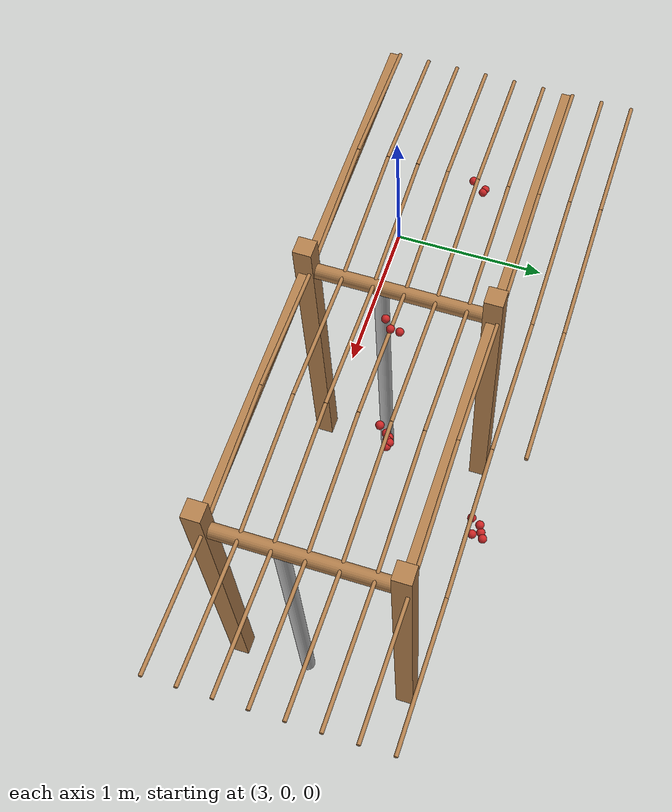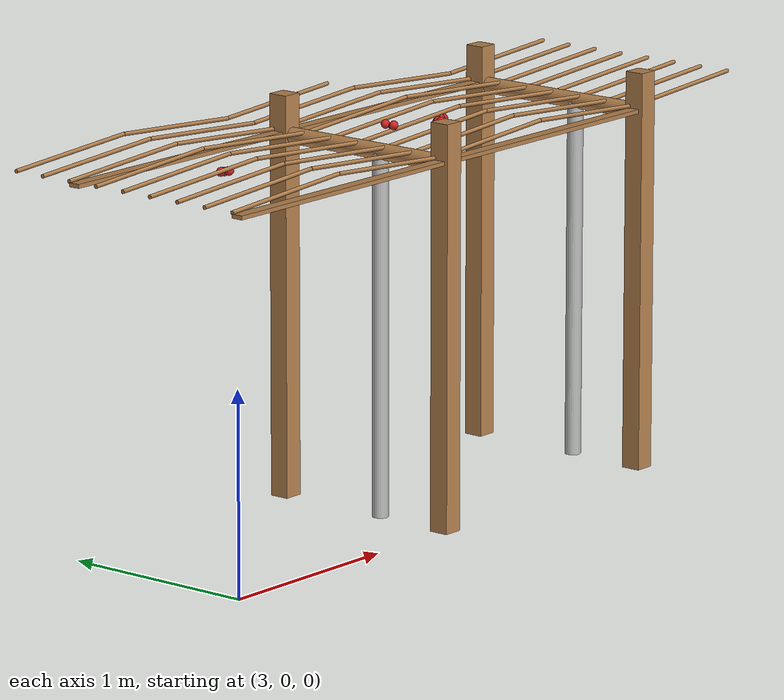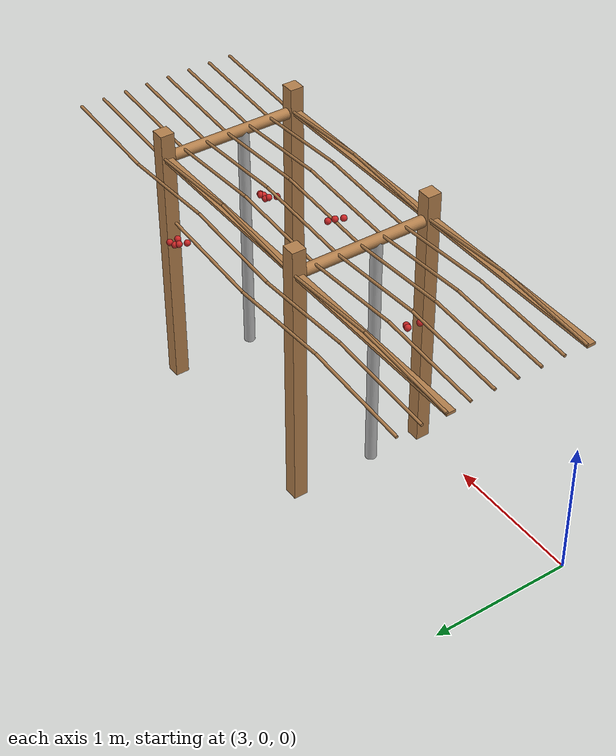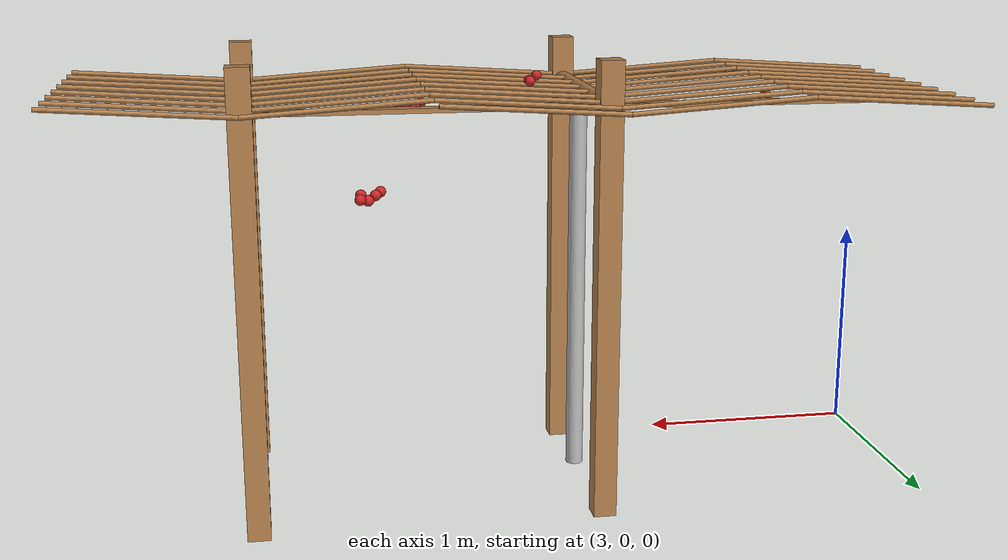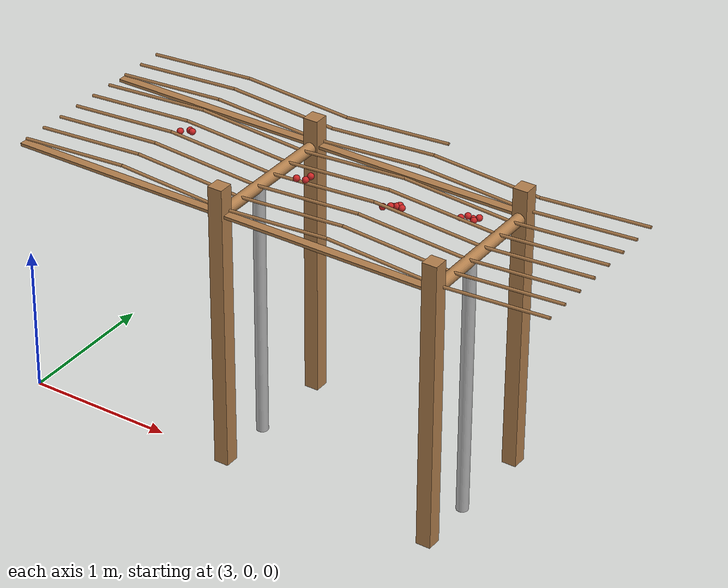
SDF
<sdf version="1.4">
 <model name="pergola">
  <include><name>post_33</name><pose>4.5 0.0 0 0 0 0</pose><uri>model://post</uri></include>
  <include><name>post_34</name><pose>4.5 1.0 0 0 0 0</pose><uri>model://post</uri></include>
  <include><name>post_44</name><pose>6.0 0.0 0 0 0 0</pose><uri>model://post</uri></include>
  <include><name>post_45</name><pose>6.0 1.0 0 0 0 0</pose><uri>model://post</uri></include>
  <link name="beam_22">
   <pose>3.75 0.0 1.81 0 0 0</pose>
   <collision name="collision"><geometry><box><size>1.5 0.06 0.02</size></box></geometry></collision>
   <visual name="visual">
    <geometry><box><size>1.5 0.06 0.02</size></box></geometry>
    <material><script><name>Gazebo/Wood</name></script></material>
   </visual>
   <inertial>
    <mass>5</mass>
    <inertia>
     <ixx>0.0016666666666666668</ixx>
     <ixy>0.0</ixy>
     <ixz>0.0</ixz>
     <iyy>0.9390000000000001</iyy>
     <iyz>0.0</iyz>
     <izz>0.9376666666666665</izz>
    </inertia>
   </inertial>
  </link>
  <link name="beam_23">
   <pose>3.75 1.0 1.81 0 0 0</pose>
   <collision name="collision"><geometry><box><size>1.5 0.06 0.02</size></box></geometry></collision>
   <visual name="visual">
    <geometry><box><size>1.5 0.06 0.02</size></box></geometry>
    <material><script><name>Gazebo/Wood</name></script></material>
   </visual>
   <inertial>
    <mass>5</mass>
    <inertia>
     <ixx>0.0016666666666666668</ixx>
     <ixy>0.0</ixy>
     <ixz>0.0</ixz>
     <iyy>0.9390000000000001</iyy>
     <iyz>0.0</iyz>
     <izz>0.9376666666666665</izz>
    </inertia>
   </inertial>
  </link>
  <link name="beam_33">
   <pose>5.25 0.0 1.81 0 0 0</pose>
   <collision name="collision"><geometry><box><size>1.5 0.06 0.02</size></box></geometry></collision>
   <visual name="visual">
    <geometry><box><size>1.5 0.06 0.02</size></box></geometry>
    <material><script><name>Gazebo/Wood</name></script></material>
   </visual>
   <inertial>
    <mass>5</mass>
    <inertia>
     <ixx>0.0016666666666666668</ixx>
     <ixy>0.0</ixy>
     <ixz>0.0</ixz>
     <iyy>0.9390000000000001</iyy>
     <iyz>0.0</iyz>
     <izz>0.9376666666666665</izz>
    </inertia>
   </inertial>
  </link>
  <link name="beam_34">
   <pose>5.25 1.0 1.81 0 0 0</pose>
   <collision name="collision"><geometry><box><size>1.5 0.06 0.02</size></box></geometry></collision>
   <visual name="visual">
    <geometry><box><size>1.5 0.06 0.02</size></box></geometry>
    <material><script><name>Gazebo/Wood</name></script></material>
   </visual>
   <inertial>
    <mass>5</mass>
    <inertia>
     <ixx>0.0016666666666666668</ixx>
     <ixy>0.0</ixy>
     <ixz>0.0</ixz>
     <iyy>0.9390000000000001</iyy>
     <iyz>0.0</iyz>
     <izz>0.9376666666666665</izz>
    </inertia>
   </inertial>
  </link>
  <include><name>tree_30</name><pose>4.5 0.4 0 0 0 0</pose><uri>model://tree_trunk</uri></include>
  <include><name>tree_40</name><pose>6.0 0.4 0 0 0 0</pose><uri>model://tree_trunk</uri></include>
  <link name="baseBranch_30">
   <pose>4.5 0.5 1.8 1.5707963267948966 0 0</pose>
   <collision name="collision">
    <geometry><cylinder><radius>0.04</radius><length>0.94</length></cylinder></geometry>
   </collision>
   <visual name="visual">
    <geometry><cylinder><radius>0.04</radius><length>0.94</length></cylinder></geometry>
    <material><script><name>Gazebo/WoodFloor</name></script></material>
   </visual>
   <inertial>
    <mass>10</mass>
    <inertia>
     <ixx>0.7403333333333334</ixx>
     <ixy>0.0</ixy>
     <ixz>0.0</ixz>
     <iyy>0.7403333333333334</iyy>
     <iyz>0.0</iyz>
     <izz>0.008</izz>
    </inertia>
   </inertial>
  </link>
  <link name="baseBranch_40">
   <pose>6.0 0.5 1.8 1.5707963267948966 0 0</pose>
   <collision name="collision">
    <geometry><cylinder><radius>0.04</radius><length>0.94</length></cylinder></geometry>
   </collision>
   <visual name="visual">
    <geometry><cylinder><radius>0.04</radius><length>0.94</length></cylinder></geometry>
    <material><script><name>Gazebo/WoodFloor</name></script></material>
   </visual>
   <inertial>
    <mass>10</mass>
    <inertia>
     <ixx>0.7403333333333334</ixx>
     <ixy>0.0</ixy>
     <ixz>0.0</ixz>
     <iyy>0.7403333333333334</iyy>
     <iyz>0.0</iyz>
     <izz>0.008</izz>
    </inertia>
   </inertial>
  </link>
  <link name="vine_240">
   <pose>3.375 0.03 1.85 0 1.5042281630190728 0</pose>
   <collision name="collision">
    <geometry><cylinder><radius>0.01</radius><length>0.7516648189186453</length></cylinder></geometry>
   </collision>
   <visual name="visual">
    <geometry><cylinder><radius>0.01</radius><length>0.7516648189186453</length></cylinder></geometry>
    <material><script><name>Gazebo/WoodFloor</name></script></material>
   </visual>
   <inertial>
    <mass>5</mass>
    <inertia>
     <ixx>0.23554166666666657</ixx>
     <ixy>0.0</ixy>
     <ixz>0.0</ixz>
     <iyy>0.23554166666666657</iyy>
     <iyz>0.0</iyz>
     <izz>0.00025</izz>
    </inertia>
   </inertial>
  </link>
  <link name="vine_241">
   <pose>4.125 0.03 1.85 0 -1.5042281630190728 0</pose>
   <collision name="collision">
    <geometry><cylinder><radius>0.01</radius><length>0.7516648189186453</length></cylinder></geometry>
   </collision>
   <visual name="visual">
    <geometry><cylinder><radius>0.01</radius><length>0.7516648189186453</length></cylinder></geometry>
    <material><script><name>Gazebo/WoodFloor</name></script></material>
   </visual>
   <inertial>
    <mass>5</mass>
    <inertia>
     <ixx>0.23554166666666657</ixx>
     <ixy>0.0</ixy>
     <ixz>0.0</ixz>
     <iyy>0.23554166666666657</iyy>
     <iyz>0.0</iyz>
     <izz>0.00025</izz>
    </inertia>
   </inertial>
  </link>
  <link name="vine_242">
   <pose>3.375 0.19666666666666666 1.85 0 1.5042281630190728 0</pose>
   <collision name="collision">
    <geometry><cylinder><radius>0.01</radius><length>0.7516648189186453</length></cylinder></geometry>
   </collision>
   <visual name="visual">
    <geometry><cylinder><radius>0.01</radius><length>0.7516648189186453</length></cylinder></geometry>
    <material><script><name>Gazebo/WoodFloor</name></script></material>
   </visual>
   <inertial>
    <mass>5</mass>
    <inertia>
     <ixx>0.23554166666666657</ixx>
     <ixy>0.0</ixy>
     <ixz>0.0</ixz>
     <iyy>0.23554166666666657</iyy>
     <iyz>0.0</iyz>
     <izz>0.00025</izz>
    </inertia>
   </inertial>
  </link>
  <link name="vine_243">
   <pose>4.125 0.19666666666666666 1.85 0 -1.5042281630190728 0</pose>
   <collision name="collision">
    <geometry><cylinder><radius>0.01</radius><length>0.7516648189186453</length></cylinder></geometry>
   </collision>
   <visual name="visual">
    <geometry><cylinder><radius>0.01</radius><length>0.7516648189186453</length></cylinder></geometry>
    <material><script><name>Gazebo/WoodFloor</name></script></material>
   </visual>
   <inertial>
    <mass>5</mass>
    <inertia>
     <ixx>0.23554166666666657</ixx>
     <ixy>0.0</ixy>
     <ixz>0.0</ixz>
     <iyy>0.23554166666666657</iyy>
     <iyz>0.0</iyz>
     <izz>0.00025</izz>
    </inertia>
   </inertial>
  </link>
  <link name="vine_244">
   <pose>3.375 0.3633333333333333 1.85 0 1.5042281630190728 0</pose>
   <collision name="collision">
    <geometry><cylinder><radius>0.01</radius><length>0.7516648189186453</length></cylinder></geometry>
   </collision>
   <visual name="visual">
    <geometry><cylinder><radius>0.01</radius><length>0.7516648189186453</length></cylinder></geometry>
    <material><script><name>Gazebo/WoodFloor</name></script></material>
   </visual>
   <inertial>
    <mass>5</mass>
    <inertia>
     <ixx>0.23554166666666657</ixx>
     <ixy>0.0</ixy>
     <ixz>0.0</ixz>
     <iyy>0.23554166666666657</iyy>
     <iyz>0.0</iyz>
     <izz>0.00025</izz>
    </inertia>
   </inertial>
  </link>
  <link name="vine_245">
   <pose>4.125 0.3633333333333333 1.85 0 -1.5042281630190728 0</pose>
   <collision name="collision">
    <geometry><cylinder><radius>0.01</radius><length>0.7516648189186453</length></cylinder></geometry>
   </collision>
   <visual name="visual">
    <geometry><cylinder><radius>0.01</radius><length>0.7516648189186453</length></cylinder></geometry>
    <material><script><name>Gazebo/WoodFloor</name></script></material>
   </visual>
   <inertial>
    <mass>5</mass>
    <inertia>
     <ixx>0.23554166666666657</ixx>
     <ixy>0.0</ixy>
     <ixz>0.0</ixz>
     <iyy>0.23554166666666657</iyy>
     <iyz>0.0</iyz>
     <izz>0.00025</izz>
    </inertia>
   </inertial>
  </link>
  <link name="vine_246">
   <pose>3.375 0.53 1.85 0 1.5042281630190728 0</pose>
   <collision name="collision">
    <geometry><cylinder><radius>0.01</radius><length>0.7516648189186453</length></cylinder></geometry>
   </collision>
   <visual name="visual">
    <geometry><cylinder><radius>0.01</radius><length>0.7516648189186453</length></cylinder></geometry>
    <material><script><name>Gazebo/WoodFloor</name></script></material>
   </visual>
   <inertial>
    <mass>5</mass>
    <inertia>
     <ixx>0.23554166666666657</ixx>
     <ixy>0.0</ixy>
     <ixz>0.0</ixz>
     <iyy>0.23554166666666657</iyy>
     <iyz>0.0</iyz>
     <izz>0.00025</izz>
    </inertia>
   </inertial>
  </link>
  <link name="vine_247">
   <pose>4.125 0.53 1.85 0 -1.5042281630190728 0</pose>
   <collision name="collision">
    <geometry><cylinder><radius>0.01</radius><length>0.7516648189186453</length></cylinder></geometry>
   </collision>
   <visual name="visual">
    <geometry><cylinder><radius>0.01</radius><length>0.7516648189186453</length></cylinder></geometry>
    <material><script><name>Gazebo/WoodFloor</name></script></material>
   </visual>
   <inertial>
    <mass>5</mass>
    <inertia>
     <ixx>0.23554166666666657</ixx>
     <ixy>0.0</ixy>
     <ixz>0.0</ixz>
     <iyy>0.23554166666666657</iyy>
     <iyz>0.0</iyz>
     <izz>0.00025</izz>
    </inertia>
   </inertial>
  </link>
  <link name="vine_248">
   <pose>3.375 0.6966666666666667 1.85 0 1.5042281630190728 0</pose>
   <collision name="collision">
    <geometry><cylinder><radius>0.01</radius><length>0.7516648189186453</length></cylinder></geometry>
   </collision>
   <visual name="visual">
    <geometry><cylinder><radius>0.01</radius><length>0.7516648189186453</length></cylinder></geometry>
    <material><script><name>Gazebo/WoodFloor</name></script></material>
   </visual>
   <inertial>
    <mass>5</mass>
    <inertia>
     <ixx>0.23554166666666657</ixx>
     <ixy>0.0</ixy>
     <ixz>0.0</ixz>
     <iyy>0.23554166666666657</iyy>
     <iyz>0.0</iyz>
     <izz>0.00025</izz>
    </inertia>
   </inertial>
  </link>
  <link name="vine_249">
   <pose>4.125 0.6966666666666667 1.85 0 -1.5042281630190728 0</pose>
   <collision name="collision">
    <geometry><cylinder><radius>0.01</radius><length>0.7516648189186453</length></cylinder></geometry>
   </collision>
   <visual name="visual">
    <geometry><cylinder><radius>0.01</radius><length>0.7516648189186453</length></cylinder></geometry>
    <material><script><name>Gazebo/WoodFloor</name></script></material>
   </visual>
   <inertial>
    <mass>5</mass>
    <inertia>
     <ixx>0.23554166666666657</ixx>
     <ixy>0.0</ixy>
     <ixz>0.0</ixz>
     <iyy>0.23554166666666657</iyy>
     <iyz>0.0</iyz>
     <izz>0.00025</izz>
    </inertia>
   </inertial>
  </link>
  <link name="vine_250">
   <pose>3.375 0.8633333333333333 1.85 0 1.5042281630190728 0</pose>
   <collision name="collision">
    <geometry><cylinder><radius>0.01</radius><length>0.7516648189186453</length></cylinder></geometry>
   </collision>
   <visual name="visual">
    <geometry><cylinder><radius>0.01</radius><length>0.7516648189186453</length></cylinder></geometry>
    <material><script><name>Gazebo/WoodFloor</name></script></material>
   </visual>
   <inertial>
    <mass>5</mass>
    <inertia>
     <ixx>0.23554166666666657</ixx>
     <ixy>0.0</ixy>
     <ixz>0.0</ixz>
     <iyy>0.23554166666666657</iyy>
     <iyz>0.0</iyz>
     <izz>0.00025</izz>
    </inertia>
   </inertial>
  </link>
  <link name="vine_251">
   <pose>4.125 0.8633333333333333 1.85 0 -1.5042281630190728 0</pose>
   <collision name="collision">
    <geometry><cylinder><radius>0.01</radius><length>0.7516648189186453</length></cylinder></geometry>
   </collision>
   <visual name="visual">
    <geometry><cylinder><radius>0.01</radius><length>0.7516648189186453</length></cylinder></geometry>
    <material><script><name>Gazebo/WoodFloor</name></script></material>
   </visual>
   <inertial>
    <mass>5</mass>
    <inertia>
     <ixx>0.23554166666666657</ixx>
     <ixy>0.0</ixy>
     <ixz>0.0</ixz>
     <iyy>0.23554166666666657</iyy>
     <iyz>0.0</iyz>
     <izz>0.00025</izz>
    </inertia>
   </inertial>
  </link>
  <link name="vine_252">
   <pose>3.375 1.03 1.85 0 1.5042281630190728 0</pose>
   <collision name="collision">
    <geometry><cylinder><radius>0.01</radius><length>0.7516648189186453</length></cylinder></geometry>
   </collision>
   <visual name="visual">
    <geometry><cylinder><radius>0.01</radius><length>0.7516648189186453</length></cylinder></geometry>
    <material><script><name>Gazebo/WoodFloor</name></script></material>
   </visual>
   <inertial>
    <mass>5</mass>
    <inertia>
     <ixx>0.23554166666666657</ixx>
     <ixy>0.0</ixy>
     <ixz>0.0</ixz>
     <iyy>0.23554166666666657</iyy>
     <iyz>0.0</iyz>
     <izz>0.00025</izz>
    </inertia>
   </inertial>
  </link>
  <link name="vine_253">
   <pose>4.125 1.03 1.85 0 -1.5042281630190728 0</pose>
   <collision name="collision">
    <geometry><cylinder><radius>0.01</radius><length>0.7516648189186453</length></cylinder></geometry>
   </collision>
   <visual name="visual">
    <geometry><cylinder><radius>0.01</radius><length>0.7516648189186453</length></cylinder></geometry>
    <material><script><name>Gazebo/WoodFloor</name></script></material>
   </visual>
   <inertial>
    <mass>5</mass>
    <inertia>
     <ixx>0.23554166666666657</ixx>
     <ixy>0.0</ixy>
     <ixz>0.0</ixz>
     <iyy>0.23554166666666657</iyy>
     <iyz>0.0</iyz>
     <izz>0.00025</izz>
    </inertia>
   </inertial>
  </link>
  <link name="vine_254">
   <pose>3.375 1.1966666666666665 1.85 0 1.5042281630190728 0</pose>
   <collision name="collision">
    <geometry><cylinder><radius>0.01</radius><length>0.7516648189186453</length></cylinder></geometry>
   </collision>
   <visual name="visual">
    <geometry><cylinder><radius>0.01</radius><length>0.7516648189186453</length></cylinder></geometry>
    <material><script><name>Gazebo/WoodFloor</name></script></material>
   </visual>
   <inertial>
    <mass>5</mass>
    <inertia>
     <ixx>0.23554166666666657</ixx>
     <ixy>0.0</ixy>
     <ixz>0.0</ixz>
     <iyy>0.23554166666666657</iyy>
     <iyz>0.0</iyz>
     <izz>0.00025</izz>
    </inertia>
   </inertial>
  </link>
  <link name="vine_255">
   <pose>4.125 1.1966666666666665 1.85 0 -1.5042281630190728 0</pose>
   <collision name="collision">
    <geometry><cylinder><radius>0.01</radius><length>0.7516648189186453</length></cylinder></geometry>
   </collision>
   <visual name="visual">
    <geometry><cylinder><radius>0.01</radius><length>0.7516648189186453</length></cylinder></geometry>
    <material><script><name>Gazebo/WoodFloor</name></script></material>
   </visual>
   <inertial>
    <mass>5</mass>
    <inertia>
     <ixx>0.23554166666666657</ixx>
     <ixy>0.0</ixy>
     <ixz>0.0</ixz>
     <iyy>0.23554166666666657</iyy>
     <iyz>0.0</iyz>
     <izz>0.00025</izz>
    </inertia>
   </inertial>
  </link>
  <link name="vine_256">
   <pose>3.375 1.3633333333333333 1.85 0 1.5042281630190728 0</pose>
   <collision name="collision">
    <geometry><cylinder><radius>0.01</radius><length>0.7516648189186453</length></cylinder></geometry>
   </collision>
   <visual name="visual">
    <geometry><cylinder><radius>0.01</radius><length>0.7516648189186453</length></cylinder></geometry>
    <material><script><name>Gazebo/WoodFloor</name></script></material>
   </visual>
   <inertial>
    <mass>5</mass>
    <inertia>
     <ixx>0.23554166666666657</ixx>
     <ixy>0.0</ixy>
     <ixz>0.0</ixz>
     <iyy>0.23554166666666657</iyy>
     <iyz>0.0</iyz>
     <izz>0.00025</izz>
    </inertia>
   </inertial>
  </link>
  <link name="vine_257">
   <pose>4.125 1.3633333333333333 1.85 0 -1.5042281630190728 0</pose>
   <collision name="collision">
    <geometry><cylinder><radius>0.01</radius><length>0.7516648189186453</length></cylinder></geometry>
   </collision>
   <visual name="visual">
    <geometry><cylinder><radius>0.01</radius><length>0.7516648189186453</length></cylinder></geometry>
    <material><script><name>Gazebo/WoodFloor</name></script></material>
   </visual>
   <inertial>
    <mass>5</mass>
    <inertia>
     <ixx>0.23554166666666657</ixx>
     <ixy>0.0</ixy>
     <ixz>0.0</ixz>
     <iyy>0.23554166666666657</iyy>
     <iyz>0.0</iyz>
     <izz>0.00025</izz>
    </inertia>
   </inertial>
  </link>
  <link name="vine_360">
   <pose>4.875 0.03 1.85 0 1.5042281630190728 0</pose>
   <collision name="collision">
    <geometry><cylinder><radius>0.01</radius><length>0.7516648189186453</length></cylinder></geometry>
   </collision>
   <visual name="visual">
    <geometry><cylinder><radius>0.01</radius><length>0.7516648189186453</length></cylinder></geometry>
    <material><script><name>Gazebo/WoodFloor</name></script></material>
   </visual>
   <inertial>
    <mass>5</mass>
    <inertia>
     <ixx>0.23554166666666657</ixx>
     <ixy>0.0</ixy>
     <ixz>0.0</ixz>
     <iyy>0.23554166666666657</iyy>
     <iyz>0.0</iyz>
     <izz>0.00025</izz>
    </inertia>
   </inertial>
  </link>
  <link name="vine_361">
   <pose>5.625 0.03 1.85 0 -1.5042281630190728 0</pose>
   <collision name="collision">
    <geometry><cylinder><radius>0.01</radius><length>0.7516648189186453</length></cylinder></geometry>
   </collision>
   <visual name="visual">
    <geometry><cylinder><radius>0.01</radius><length>0.7516648189186453</length></cylinder></geometry>
    <material><script><name>Gazebo/WoodFloor</name></script></material>
   </visual>
   <inertial>
    <mass>5</mass>
    <inertia>
     <ixx>0.23554166666666657</ixx>
     <ixy>0.0</ixy>
     <ixz>0.0</ixz>
     <iyy>0.23554166666666657</iyy>
     <iyz>0.0</iyz>
     <izz>0.00025</izz>
    </inertia>
   </inertial>
  </link>
  <link name="vine_362">
   <pose>4.875 0.19666666666666666 1.85 0 1.5042281630190728 0</pose>
   <collision name="collision">
    <geometry><cylinder><radius>0.01</radius><length>0.7516648189186453</length></cylinder></geometry>
   </collision>
   <visual name="visual">
    <geometry><cylinder><radius>0.01</radius><length>0.7516648189186453</length></cylinder></geometry>
    <material><script><name>Gazebo/WoodFloor</name></script></material>
   </visual>
   <inertial>
    <mass>5</mass>
    <inertia>
     <ixx>0.23554166666666657</ixx>
     <ixy>0.0</ixy>
     <ixz>0.0</ixz>
     <iyy>0.23554166666666657</iyy>
     <iyz>0.0</iyz>
     <izz>0.00025</izz>
    </inertia>
   </inertial>
  </link>
  <link name="vine_363">
   <pose>5.625 0.19666666666666666 1.85 0 -1.5042281630190728 0</pose>
   <collision name="collision">
    <geometry><cylinder><radius>0.01</radius><length>0.7516648189186453</length></cylinder></geometry>
   </collision>
   <visual name="visual">
    <geometry><cylinder><radius>0.01</radius><length>0.7516648189186453</length></cylinder></geometry>
    <material><script><name>Gazebo/WoodFloor</name></script></material>
   </visual>
   <inertial>
    <mass>5</mass>
    <inertia>
     <ixx>0.23554166666666657</ixx>
     <ixy>0.0</ixy>
     <ixz>0.0</ixz>
     <iyy>0.23554166666666657</iyy>
     <iyz>0.0</iyz>
     <izz>0.00025</izz>
    </inertia>
   </inertial>
  </link>
  <link name="vine_364">
   <pose>4.875 0.3633333333333333 1.85 0 1.5042281630190728 0</pose>
   <collision name="collision">
    <geometry><cylinder><radius>0.01</radius><length>0.7516648189186453</length></cylinder></geometry>
   </collision>
   <visual name="visual">
    <geometry><cylinder><radius>0.01</radius><length>0.7516648189186453</length></cylinder></geometry>
    <material><script><name>Gazebo/WoodFloor</name></script></material>
   </visual>
   <inertial>
    <mass>5</mass>
    <inertia>
     <ixx>0.23554166666666657</ixx>
     <ixy>0.0</ixy>
     <ixz>0.0</ixz>
     <iyy>0.23554166666666657</iyy>
     <iyz>0.0</iyz>
     <izz>0.00025</izz>
    </inertia>
   </inertial>
  </link>
  <link name="vine_365">
   <pose>5.625 0.3633333333333333 1.85 0 -1.5042281630190728 0</pose>
   <collision name="collision">
    <geometry><cylinder><radius>0.01</radius><length>0.7516648189186453</length></cylinder></geometry>
   </collision>
   <visual name="visual">
    <geometry><cylinder><radius>0.01</radius><length>0.7516648189186453</length></cylinder></geometry>
    <material><script><name>Gazebo/WoodFloor</name></script></material>
   </visual>
   <inertial>
    <mass>5</mass>
    <inertia>
     <ixx>0.23554166666666657</ixx>
     <ixy>0.0</ixy>
     <ixz>0.0</ixz>
     <iyy>0.23554166666666657</iyy>
     <iyz>0.0</iyz>
     <izz>0.00025</izz>
    </inertia>
   </inertial>
  </link>
  <link name="vine_366">
   <pose>4.875 0.53 1.85 0 1.5042281630190728 0</pose>
   <collision name="collision">
    <geometry><cylinder><radius>0.01</radius><length>0.7516648189186453</length></cylinder></geometry>
   </collision>
   <visual name="visual">
    <geometry><cylinder><radius>0.01</radius><length>0.7516648189186453</length></cylinder></geometry>
    <material><script><name>Gazebo/WoodFloor</name></script></material>
   </visual>
   <inertial>
    <mass>5</mass>
    <inertia>
     <ixx>0.23554166666666657</ixx>
     <ixy>0.0</ixy>
     <ixz>0.0</ixz>
     <iyy>0.23554166666666657</iyy>
     <iyz>0.0</iyz>
     <izz>0.00025</izz>
    </inertia>
   </inertial>
  </link>
  <link name="vine_367">
   <pose>5.625 0.53 1.85 0 -1.5042281630190728 0</pose>
   <collision name="collision">
    <geometry><cylinder><radius>0.01</radius><length>0.7516648189186453</length></cylinder></geometry>
   </collision>
   <visual name="visual">
    <geometry><cylinder><radius>0.01</radius><length>0.7516648189186453</length></cylinder></geometry>
    <material><script><name>Gazebo/WoodFloor</name></script></material>
   </visual>
   <inertial>
    <mass>5</mass>
    <inertia>
     <ixx>0.23554166666666657</ixx>
     <ixy>0.0</ixy>
     <ixz>0.0</ixz>
     <iyy>0.23554166666666657</iyy>
     <iyz>0.0</iyz>
     <izz>0.00025</izz>
    </inertia>
   </inertial>
  </link>
  <link name="vine_368">
   <pose>4.875 0.6966666666666667 1.85 0 1.5042281630190728 0</pose>
   <collision name="collision">
    <geometry><cylinder><radius>0.01</radius><length>0.7516648189186453</length></cylinder></geometry>
   </collision>
   <visual name="visual">
    <geometry><cylinder><radius>0.01</radius><length>0.7516648189186453</length></cylinder></geometry>
    <material><script><name>Gazebo/WoodFloor</name></script></material>
   </visual>
   <inertial>
    <mass>5</mass>
    <inertia>
     <ixx>0.23554166666666657</ixx>
     <ixy>0.0</ixy>
     <ixz>0.0</ixz>
     <iyy>0.23554166666666657</iyy>
     <iyz>0.0</iyz>
     <izz>0.00025</izz>
    </inertia>
   </inertial>
  </link>
  <link name="vine_369">
   <pose>5.625 0.6966666666666667 1.85 0 -1.5042281630190728 0</pose>
   <collision name="collision">
    <geometry><cylinder><radius>0.01</radius><length>0.7516648189186453</length></cylinder></geometry>
   </collision>
   <visual name="visual">
    <geometry><cylinder><radius>0.01</radius><length>0.7516648189186453</length></cylinder></geometry>
    <material><script><name>Gazebo/WoodFloor</name></script></material>
   </visual>
   <inertial>
    <mass>5</mass>
    <inertia>
     <ixx>0.23554166666666657</ixx>
     <ixy>0.0</ixy>
     <ixz>0.0</ixz>
     <iyy>0.23554166666666657</iyy>
     <iyz>0.0</iyz>
     <izz>0.00025</izz>
    </inertia>
   </inertial>
  </link>
  <link name="vine_370">
   <pose>4.875 0.8633333333333333 1.85 0 1.5042281630190728 0</pose>
   <collision name="collision">
    <geometry><cylinder><radius>0.01</radius><length>0.7516648189186453</length></cylinder></geometry>
   </collision>
   <visual name="visual">
    <geometry><cylinder><radius>0.01</radius><length>0.7516648189186453</length></cylinder></geometry>
    <material><script><name>Gazebo/WoodFloor</name></script></material>
   </visual>
   <inertial>
    <mass>5</mass>
    <inertia>
     <ixx>0.23554166666666657</ixx>
     <ixy>0.0</ixy>
     <ixz>0.0</ixz>
     <iyy>0.23554166666666657</iyy>
     <iyz>0.0</iyz>
     <izz>0.00025</izz>
    </inertia>
   </inertial>
  </link>
  <link name="vine_371">
   <pose>5.625 0.8633333333333333 1.85 0 -1.5042281630190728 0</pose>
   <collision name="collision">
    <geometry><cylinder><radius>0.01</radius><length>0.7516648189186453</length></cylinder></geometry>
   </collision>
   <visual name="visual">
    <geometry><cylinder><radius>0.01</radius><length>0.7516648189186453</length></cylinder></geometry>
    <material><script><name>Gazebo/WoodFloor</name></script></material>
   </visual>
   <inertial>
    <mass>5</mass>
    <inertia>
     <ixx>0.23554166666666657</ixx>
     <ixy>0.0</ixy>
     <ixz>0.0</ixz>
     <iyy>0.23554166666666657</iyy>
     <iyz>0.0</iyz>
     <izz>0.00025</izz>
    </inertia>
   </inertial>
  </link>
  <link name="vine_372">
   <pose>4.875 1.03 1.85 0 1.5042281630190728 0</pose>
   <collision name="collision">
    <geometry><cylinder><radius>0.01</radius><length>0.7516648189186453</length></cylinder></geometry>
   </collision>
   <visual name="visual">
    <geometry><cylinder><radius>0.01</radius><length>0.7516648189186453</length></cylinder></geometry>
    <material><script><name>Gazebo/WoodFloor</name></script></material>
   </visual>
   <inertial>
    <mass>5</mass>
    <inertia>
     <ixx>0.23554166666666657</ixx>
     <ixy>0.0</ixy>
     <ixz>0.0</ixz>
     <iyy>0.23554166666666657</iyy>
     <iyz>0.0</iyz>
     <izz>0.00025</izz>
    </inertia>
   </inertial>
  </link>
  <link name="vine_373">
   <pose>5.625 1.03 1.85 0 -1.5042281630190728 0</pose>
   <collision name="collision">
    <geometry><cylinder><radius>0.01</radius><length>0.7516648189186453</length></cylinder></geometry>
   </collision>
   <visual name="visual">
    <geometry><cylinder><radius>0.01</radius><length>0.7516648189186453</length></cylinder></geometry>
    <material><script><name>Gazebo/WoodFloor</name></script></material>
   </visual>
   <inertial>
    <mass>5</mass>
    <inertia>
     <ixx>0.23554166666666657</ixx>
     <ixy>0.0</ixy>
     <ixz>0.0</ixz>
     <iyy>0.23554166666666657</iyy>
     <iyz>0.0</iyz>
     <izz>0.00025</izz>
    </inertia>
   </inertial>
  </link>
  <link name="vine_374">
   <pose>4.875 1.1966666666666665 1.85 0 1.5042281630190728 0</pose>
   <collision name="collision">
    <geometry><cylinder><radius>0.01</radius><length>0.7516648189186453</length></cylinder></geometry>
   </collision>
   <visual name="visual">
    <geometry><cylinder><radius>0.01</radius><length>0.7516648189186453</length></cylinder></geometry>
    <material><script><name>Gazebo/WoodFloor</name></script></material>
   </visual>
   <inertial>
    <mass>5</mass>
    <inertia>
     <ixx>0.23554166666666657</ixx>
     <ixy>0.0</ixy>
     <ixz>0.0</ixz>
     <iyy>0.23554166666666657</iyy>
     <iyz>0.0</iyz>
     <izz>0.00025</izz>
    </inertia>
   </inertial>
  </link>
  <link name="vine_375">
   <pose>5.625 1.1966666666666665 1.85 0 -1.5042281630190728 0</pose>
   <collision name="collision">
    <geometry><cylinder><radius>0.01</radius><length>0.7516648189186453</length></cylinder></geometry>
   </collision>
   <visual name="visual">
    <geometry><cylinder><radius>0.01</radius><length>0.7516648189186453</length></cylinder></geometry>
    <material><script><name>Gazebo/WoodFloor</name></script></material>
   </visual>
   <inertial>
    <mass>5</mass>
    <inertia>
     <ixx>0.23554166666666657</ixx>
     <ixy>0.0</ixy>
     <ixz>0.0</ixz>
     <iyy>0.23554166666666657</iyy>
     <iyz>0.0</iyz>
     <izz>0.00025</izz>
    </inertia>
   </inertial>
  </link>
  <link name="vine_376">
   <pose>4.875 1.3633333333333333 1.85 0 1.5042281630190728 0</pose>
   <collision name="collision">
    <geometry><cylinder><radius>0.01</radius><length>0.7516648189186453</length></cylinder></geometry>
   </collision>
   <visual name="visual">
    <geometry><cylinder><radius>0.01</radius><length>0.7516648189186453</length></cylinder></geometry>
    <material><script><name>Gazebo/WoodFloor</name></script></material>
   </visual>
   <inertial>
    <mass>5</mass>
    <inertia>
     <ixx>0.23554166666666657</ixx>
     <ixy>0.0</ixy>
     <ixz>0.0</ixz>
     <iyy>0.23554166666666657</iyy>
     <iyz>0.0</iyz>
     <izz>0.00025</izz>
    </inertia>
   </inertial>
  </link>
  <link name="vine_480">
   <pose>6.375 0.03 1.85 0 1.5042281630190728 0</pose>
   <collision name="collision">
    <geometry><cylinder><radius>0.01</radius><length>0.7516648189186453</length></cylinder></geometry>
   </collision>
   <visual name="visual">
    <geometry><cylinder><radius>0.01</radius><length>0.7516648189186453</length></cylinder></geometry>
    <material><script><name>Gazebo/WoodFloor</name></script></material>
   </visual>
   <inertial>
    <mass>5</mass>
    <inertia>
     <ixx>0.23554166666666657</ixx>
     <ixy>0.0</ixy>
     <ixz>0.0</ixz>
     <iyy>0.23554166666666657</iyy>
     <iyz>0.0</iyz>
     <izz>0.00025</izz>
    </inertia>
   </inertial>
  </link>
  <link name="vine_482">
   <pose>6.375 0.19666666666666666 1.85 0 1.5042281630190728 0</pose>
   <collision name="collision">
    <geometry><cylinder><radius>0.01</radius><length>0.7516648189186453</length></cylinder></geometry>
   </collision>
   <visual name="visual">
    <geometry><cylinder><radius>0.01</radius><length>0.7516648189186453</length></cylinder></geometry>
    <material><script><name>Gazebo/WoodFloor</name></script></material>
   </visual>
   <inertial>
    <mass>5</mass>
    <inertia>
     <ixx>0.23554166666666657</ixx>
     <ixy>0.0</ixy>
     <ixz>0.0</ixz>
     <iyy>0.23554166666666657</iyy>
     <iyz>0.0</iyz>
     <izz>0.00025</izz>
    </inertia>
   </inertial>
  </link>
  <link name="vine_484">
   <pose>6.375 0.3633333333333333 1.85 0 1.5042281630190728 0</pose>
   <collision name="collision">
    <geometry><cylinder><radius>0.01</radius><length>0.7516648189186453</length></cylinder></geometry>
   </collision>
   <visual name="visual">
    <geometry><cylinder><radius>0.01</radius><length>0.7516648189186453</length></cylinder></geometry>
    <material><script><name>Gazebo/WoodFloor</name></script></material>
   </visual>
   <inertial>
    <mass>5</mass>
    <inertia>
     <ixx>0.23554166666666657</ixx>
     <ixy>0.0</ixy>
     <ixz>0.0</ixz>
     <iyy>0.23554166666666657</iyy>
     <iyz>0.0</iyz>
     <izz>0.00025</izz>
    </inertia>
   </inertial>
  </link>
  <link name="vine_486">
   <pose>6.375 0.53 1.85 0 1.5042281630190728 0</pose>
   <collision name="collision">
    <geometry><cylinder><radius>0.01</radius><length>0.7516648189186453</length></cylinder></geometry>
   </collision>
   <visual name="visual">
    <geometry><cylinder><radius>0.01</radius><length>0.7516648189186453</length></cylinder></geometry>
    <material><script><name>Gazebo/WoodFloor</name></script></material>
   </visual>
   <inertial>
    <mass>5</mass>
    <inertia>
     <ixx>0.23554166666666657</ixx>
     <ixy>0.0</ixy>
     <ixz>0.0</ixz>
     <iyy>0.23554166666666657</iyy>
     <iyz>0.0</iyz>
     <izz>0.00025</izz>
    </inertia>
   </inertial>
  </link>
  <link name="vine_488">
   <pose>6.375 0.6966666666666667 1.85 0 1.5042281630190728 0</pose>
   <collision name="collision">
    <geometry><cylinder><radius>0.01</radius><length>0.7516648189186453</length></cylinder></geometry>
   </collision>
   <visual name="visual">
    <geometry><cylinder><radius>0.01</radius><length>0.7516648189186453</length></cylinder></geometry>
    <material><script><name>Gazebo/WoodFloor</name></script></material>
   </visual>
   <inertial>
    <mass>5</mass>
    <inertia>
     <ixx>0.23554166666666657</ixx>
     <ixy>0.0</ixy>
     <ixz>0.0</ixz>
     <iyy>0.23554166666666657</iyy>
     <iyz>0.0</iyz>
     <izz>0.00025</izz>
    </inertia>
   </inertial>
  </link>
  <link name="vine_490">
   <pose>6.375 0.8633333333333333 1.85 0 1.5042281630190728 0</pose>
   <collision name="collision">
    <geometry><cylinder><radius>0.01</radius><length>0.7516648189186453</length></cylinder></geometry>
   </collision>
   <visual name="visual">
    <geometry><cylinder><radius>0.01</radius><length>0.7516648189186453</length></cylinder></geometry>
    <material><script><name>Gazebo/WoodFloor</name></script></material>
   </visual>
   <inertial>
    <mass>5</mass>
    <inertia>
     <ixx>0.23554166666666657</ixx>
     <ixy>0.0</ixy>
     <ixz>0.0</ixz>
     <iyy>0.23554166666666657</iyy>
     <iyz>0.0</iyz>
     <izz>0.00025</izz>
    </inertia>
   </inertial>
  </link>
  <link name="vine_492">
   <pose>6.375 1.03 1.85 0 1.5042281630190728 0</pose>
   <collision name="collision">
    <geometry><cylinder><radius>0.01</radius><length>0.7516648189186453</length></cylinder></geometry>
   </collision>
   <visual name="visual">
    <geometry><cylinder><radius>0.01</radius><length>0.7516648189186453</length></cylinder></geometry>
    <material><script><name>Gazebo/WoodFloor</name></script></material>
   </visual>
   <inertial>
    <mass>5</mass>
    <inertia>
     <ixx>0.23554166666666657</ixx>
     <ixy>0.0</ixy>
     <ixz>0.0</ixz>
     <iyy>0.23554166666666657</iyy>
     <iyz>0.0</iyz>
     <izz>0.00025</izz>
    </inertia>
   </inertial>
  </link>
  <link name="vine_494">
   <pose>6.375 1.1966666666666665 1.85 0 1.5042281630190728 0</pose>
   <collision name="collision">
    <geometry><cylinder><radius>0.01</radius><length>0.7516648189186453</length></cylinder></geometry>
   </collision>
   <visual name="visual">
    <geometry><cylinder><radius>0.01</radius><length>0.7516648189186453</length></cylinder></geometry>
    <material><script><name>Gazebo/WoodFloor</name></script></material>
   </visual>
   <inertial>
    <mass>5</mass>
    <inertia>
     <ixx>0.23554166666666657</ixx>
     <ixy>0.0</ixy>
     <ixz>0.0</ixz>
     <iyy>0.23554166666666657</iyy>
     <iyz>0.0</iyz>
     <izz>0.00025</izz>
    </inertia>
   </inertial>
  </link>
  <link name="fruit_71">
   <pose>4.712386281996463 0.4943618336564807 1.877119503373545 0 0 0</pose>
   <collision name="fruit_collision_71"><geometry><sphere><radius>0.022</radius></sphere></geometry></collision>
   <visual name="visual">
    <geometry><sphere><radius>0.022</radius></sphere></geometry>
    <material><script><name>Gazebo/Red</name></script></material>
   </visual>
   <inertial>
    <mass>0.05</mass>
    <inertia>
     <ixx>9.679999999999999e-06</ixx>
     <ixy>0.0</ixy>
     <ixz>0.0</ixz>
     <iyy>9.679999999999999e-06</iyy>
     <iyz>0.0</iyz>
     <izz>9.679999999999999e-06</izz>
    </inertia>
   </inertial>
   <sensor name="fruit_contact_71" type="contact">
    <contact><collision>fruit_collision_71</collision></contact>
   </sensor>
  </link>
  <link name="fruit_79">
   <pose>5.242233891266536 0.6340227496781605 1.7874320423466026 0 0 0</pose>
   <collision name="fruit_collision_79"><geometry><sphere><radius>0.022</radius></sphere></geometry></collision>
   <visual name="visual">
    <geometry><sphere><radius>0.022</radius></sphere></geometry>
    <material><script><name>Gazebo/Red</name></script></material>
   </visual>
   <inertial>
    <mass>0.05</mass>
    <inertia>
     <ixx>9.679999999999999e-06</ixx>
     <ixy>0.0</ixy>
     <ixz>0.0</ixz>
     <iyy>9.679999999999999e-06</iyy>
     <iyz>0.0</iyz>
     <izz>9.679999999999999e-06</izz>
    </inertia>
   </inertial>
   <sensor name="fruit_contact_79" type="contact">
    <contact><collision>fruit_collision_79</collision></contact>
   </sensor>
  </link>
  <link name="fruit_81">
   <pose>5.464643477515288 1.1729973322419927 1.515706863005918 0 0 0</pose>
   <collision name="fruit_collision_81"><geometry><sphere><radius>0.022</radius></sphere></geometry></collision>
   <visual name="visual">
    <geometry><sphere><radius>0.022</radius></sphere></geometry>
    <material><script><name>Gazebo/Red</name></script></material>
   </visual>
   <inertial>
    <mass>0.05</mass>
    <inertia>
     <ixx>9.679999999999999e-06</ixx>
     <ixy>0.0</ixy>
     <ixz>0.0</ixz>
     <iyy>9.679999999999999e-06</iyy>
     <iyz>0.0</iyz>
     <izz>9.679999999999999e-06</izz>
    </inertia>
   </inertial>
   <sensor name="fruit_contact_81" type="contact">
    <contact><collision>fruit_collision_81</collision></contact>
   </sensor>
  </link>
  <link name="fruit_94">
   <pose>3.712235240946072 0.6654951206203814 1.8041585279848866 0 0 0</pose>
   <collision name="fruit_collision_94"><geometry><sphere><radius>0.022</radius></sphere></geometry></collision>
   <visual name="visual">
    <geometry><sphere><radius>0.022</radius></sphere></geometry>
    <material><script><name>Gazebo/Red</name></script></material>
   </visual>
   <inertial>
    <mass>0.05</mass>
    <inertia>
     <ixx>9.679999999999999e-06</ixx>
     <ixy>0.0</ixy>
     <ixz>0.0</ixz>
     <iyy>9.679999999999999e-06</iyy>
     <iyz>0.0</iyz>
     <izz>9.679999999999999e-06</izz>
    </inertia>
   </inertial>
   <sensor name="fruit_contact_94" type="contact">
    <contact><collision>fruit_collision_94</collision></contact>
   </sensor>
  </link>
  <link name="fruit_113">
   <pose>5.337906717280713 0.6972740626045196 1.777901409168278 0 0 0</pose>
   <collision name="fruit_collision_113"><geometry><sphere><radius>0.022</radius></sphere></geometry></collision>
   <visual name="visual">
    <geometry><sphere><radius>0.022</radius></sphere></geometry>
    <material><script><name>Gazebo/Red</name></script></material>
   </visual>
   <inertial>
    <mass>0.05</mass>
    <inertia>
     <ixx>9.679999999999999e-06</ixx>
     <ixy>0.0</ixy>
     <ixz>0.0</ixz>
     <iyy>9.679999999999999e-06</iyy>
     <iyz>0.0</iyz>
     <izz>9.679999999999999e-06</izz>
    </inertia>
   </inertial>
   <sensor name="fruit_contact_113" type="contact">
    <contact><collision>fruit_collision_113</collision></contact>
   </sensor>
  </link>
  <link name="fruit_120">
   <pose>3.734618365728166 0.737967266313458 1.7843679028101131 0 0 0</pose>
   <collision name="fruit_collision_120"><geometry><sphere><radius>0.022</radius></sphere></geometry></collision>
   <visual name="visual">
    <geometry><sphere><radius>0.022</radius></sphere></geometry>
    <material><script><name>Gazebo/Red</name></script></material>
   </visual>
   <inertial>
    <mass>0.05</mass>
    <inertia>
     <ixx>9.679999999999999e-06</ixx>
     <ixy>0.0</ixy>
     <ixz>0.0</ixz>
     <iyy>9.679999999999999e-06</iyy>
     <iyz>0.0</iyz>
     <izz>9.679999999999999e-06</izz>
    </inertia>
   </inertial>
   <sensor name="fruit_contact_120" type="contact">
    <contact><collision>fruit_collision_120</collision></contact>
   </sensor>
  </link>
  <link name="fruit_182">
   <pose>5.5166173151540026 1.2349268798035584 1.493795151625963 0 0 0</pose>
   <collision name="fruit_collision_182"><geometry><sphere><radius>0.022</radius></sphere></geometry></collision>
   <visual name="visual">
    <geometry><sphere><radius>0.022</radius></sphere></geometry>
    <material><script><name>Gazebo/Red</name></script></material>
   </visual>
   <inertial>
    <mass>0.05</mass>
    <inertia>
     <ixx>9.679999999999999e-06</ixx>
     <ixy>0.0</ixy>
     <ixz>0.0</ixz>
     <iyy>9.679999999999999e-06</iyy>
     <iyz>0.0</iyz>
     <izz>9.679999999999999e-06</izz>
    </inertia>
   </inertial>
   <sensor name="fruit_contact_182" type="contact">
    <contact><collision>fruit_collision_182</collision></contact>
   </sensor>
  </link>
  <link name="fruit_187">
   <pose>5.4871677311356635 1.220502658447421 1.5114289805916736 0 0 0</pose>
   <collision name="fruit_collision_187"><geometry><sphere><radius>0.022</radius></sphere></geometry></collision>
   <visual name="visual">
    <geometry><sphere><radius>0.022</radius></sphere></geometry>
    <material><script><name>Gazebo/Red</name></script></material>
   </visual>
   <inertial>
    <mass>0.05</mass>
    <inertia>
     <ixx>9.679999999999999e-06</ixx>
     <ixy>0.0</ixy>
     <ixz>0.0</ixz>
     <iyy>9.679999999999999e-06</iyy>
     <iyz>0.0</iyz>
     <izz>9.679999999999999e-06</izz>
    </inertia>
   </inertial>
   <sensor name="fruit_contact_187" type="contact">
    <contact><collision>fruit_collision_187</collision></contact>
   </sensor>
  </link>
  <link name="fruit_200">
   <pose>5.543121152145222 1.1967634336018325 1.50940983730767 0 0 0</pose>
   <collision name="fruit_collision_200"><geometry><sphere><radius>0.022</radius></sphere></geometry></collision>
   <visual name="visual">
    <geometry><sphere><radius>0.022</radius></sphere></geometry>
    <material><script><name>Gazebo/Red</name></script></material>
   </visual>
   <inertial>
    <mass>0.05</mass>
    <inertia>
     <ixx>9.679999999999999e-06</ixx>
     <ixy>0.0</ixy>
     <ixz>0.0</ixz>
     <iyy>9.679999999999999e-06</iyy>
     <iyz>0.0</iyz>
     <izz>9.679999999999999e-06</izz>
    </inertia>
   </inertial>
   <sensor name="fruit_contact_200" type="contact">
    <contact><collision>fruit_collision_200</collision></contact>
   </sensor>
  </link>
  <link name="fruit_255">
   <pose>5.5491898437964355 1.2523801431514836 1.5019762011343465 0 0 0</pose>
   <collision name="fruit_collision_255"><geometry><sphere><radius>0.022</radius></sphere></geometry></collision>
   <visual name="visual">
    <geometry><sphere><radius>0.022</radius></sphere></geometry>
    <material><script><name>Gazebo/Red</name></script></material>
   </visual>
   <inertial>
    <mass>0.05</mass>
    <inertia>
     <ixx>9.679999999999999e-06</ixx>
     <ixy>0.0</ixy>
     <ixz>0.0</ixz>
     <iyy>9.679999999999999e-06</iyy>
     <iyz>0.0</iyz>
     <izz>9.679999999999999e-06</izz>
    </inertia>
   </inertial>
   <sensor name="fruit_contact_255" type="contact">
    <contact><collision>fruit_collision_255</collision></contact>
   </sensor>
  </link>
  <link name="fruit_273">
   <pose>5.271445714169311 0.6764026121032349 1.7802280828567214 0 0 0</pose>
   <collision name="fruit_collision_273"><geometry><sphere><radius>0.022</radius></sphere></geometry></collision>
   <visual name="visual">
    <geometry><sphere><radius>0.022</radius></sphere></geometry>
    <material><script><name>Gazebo/Red</name></script></material>
   </visual>
   <inertial>
    <mass>0.05</mass>
    <inertia>
     <ixx>9.679999999999999e-06</ixx>
     <ixy>0.0</ixy>
     <ixz>0.0</ixz>
     <iyy>9.679999999999999e-06</iyy>
     <iyz>0.0</iyz>
     <izz>9.679999999999999e-06</izz>
    </inertia>
   </inertial>
   <sensor name="fruit_contact_273" type="contact">
    <contact><collision>fruit_collision_273</collision></contact>
   </sensor>
  </link>
  <link name="fruit_309">
   <pose>4.752807010171591 0.5322755008227773 1.8606884580250163 0 0 0</pose>
   <collision name="fruit_collision_309"><geometry><sphere><radius>0.022</radius></sphere></geometry></collision>
   <visual name="visual">
    <geometry><sphere><radius>0.022</radius></sphere></geometry>
    <material><script><name>Gazebo/Red</name></script></material>
   </visual>
   <inertial>
    <mass>0.05</mass>
    <inertia>
     <ixx>9.679999999999999e-06</ixx>
     <ixy>0.0</ixy>
     <ixz>0.0</ixz>
     <iyy>9.679999999999999e-06</iyy>
     <iyz>0.0</iyz>
     <izz>9.679999999999999e-06</izz>
    </inertia>
   </inertial>
   <sensor name="fruit_contact_309" type="contact">
    <contact><collision>fruit_collision_309</collision></contact>
   </sensor>
  </link>
  <link name="fruit_317">
   <pose>5.317502765595701 0.7062311210692344 1.7859499862315091 0 0 0</pose>
   <collision name="fruit_collision_317"><geometry><sphere><radius>0.022</radius></sphere></geometry></collision>
   <visual name="visual">
    <geometry><sphere><radius>0.022</radius></sphere></geometry>
    <material><script><name>Gazebo/Red</name></script></material>
   </visual>
   <inertial>
    <mass>0.05</mass>
    <inertia>
     <ixx>9.679999999999999e-06</ixx>
     <ixy>0.0</ixy>
     <ixz>0.0</ixz>
     <iyy>9.679999999999999e-06</iyy>
     <iyz>0.0</iyz>
     <izz>9.679999999999999e-06</izz>
    </inertia>
   </inertial>
   <sensor name="fruit_contact_317" type="contact">
    <contact><collision>fruit_collision_317</collision></contact>
   </sensor>
  </link>
  <link name="fruit_374">
   <pose>5.307337449479795 0.6917871709693308 1.7832863621750734 0 0 0</pose>
   <collision name="fruit_collision_374"><geometry><sphere><radius>0.022</radius></sphere></geometry></collision>
   <visual name="visual">
    <geometry><sphere><radius>0.022</radius></sphere></geometry>
    <material><script><name>Gazebo/Red</name></script></material>
   </visual>
   <inertial>
    <mass>0.05</mass>
    <inertia>
     <ixx>9.679999999999999e-06</ixx>
     <ixy>0.0</ixy>
     <ixz>0.0</ixz>
     <iyy>9.679999999999999e-06</iyy>
     <iyz>0.0</iyz>
     <izz>9.679999999999999e-06</izz>
    </inertia>
   </inertial>
   <sensor name="fruit_contact_374" type="contact">
    <contact><collision>fruit_collision_374</collision></contact>
   </sensor>
  </link>
  <link name="fruit_395">
   <pose>3.755804864207757 0.7314204733920864 1.784182272647569 0 0 0</pose>
   <collision name="fruit_collision_395"><geometry><sphere><radius>0.022</radius></sphere></geometry></collision>
   <visual name="visual">
    <geometry><sphere><radius>0.022</radius></sphere></geometry>
    <material><script><name>Gazebo/Red</name></script></material>
   </visual>
   <inertial>
    <mass>0.05</mass>
    <inertia>
     <ixx>9.679999999999999e-06</ixx>
     <ixy>0.0</ixy>
     <ixz>0.0</ixz>
     <iyy>9.679999999999999e-06</iyy>
     <iyz>0.0</iyz>
     <izz>9.679999999999999e-06</izz>
    </inertia>
   </inertial>
   <sensor name="fruit_contact_395" type="contact">
    <contact><collision>fruit_collision_395</collision></contact>
   </sensor>
  </link>
  <link name="fruit_400">
   <pose>4.7568834938238105 0.5820718273067087 1.8634797283027937 0 0 0</pose>
   <collision name="fruit_collision_400"><geometry><sphere><radius>0.022</radius></sphere></geometry></collision>
   <visual name="visual">
    <geometry><sphere><radius>0.022</radius></sphere></geometry>
    <material><script><name>Gazebo/Red</name></script></material>
   </visual>
   <inertial>
    <mass>0.05</mass>
    <inertia>
     <ixx>9.679999999999999e-06</ixx>
     <ixy>0.0</ixy>
     <ixz>0.0</ixz>
     <iyy>9.679999999999999e-06</iyy>
     <iyz>0.0</iyz>
     <izz>9.679999999999999e-06</izz>
    </inertia>
   </inertial>
   <sensor name="fruit_contact_400" type="contact">
    <contact><collision>fruit_collision_400</collision></contact>
   </sensor>
  </link>
  <link name="fruit_405">
   <pose>5.28482301894117 0.6937652342271475 1.7715893667290292 0 0 0</pose>
   <collision name="fruit_collision_405"><geometry><sphere><radius>0.022</radius></sphere></geometry></collision>
   <visual name="visual">
    <geometry><sphere><radius>0.022</radius></sphere></geometry>
    <material><script><name>Gazebo/Red</name></script></material>
   </visual>
   <inertial>
    <mass>0.05</mass>
    <inertia>
     <ixx>9.679999999999999e-06</ixx>
     <ixy>0.0</ixy>
     <ixz>0.0</ixz>
     <iyy>9.679999999999999e-06</iyy>
     <iyz>0.0</iyz>
     <izz>9.679999999999999e-06</izz>
    </inertia>
   </inertial>
   <sensor name="fruit_contact_405" type="contact">
    <contact><collision>fruit_collision_405</collision></contact>
   </sensor>
  </link>
 </model>
</sdf>
